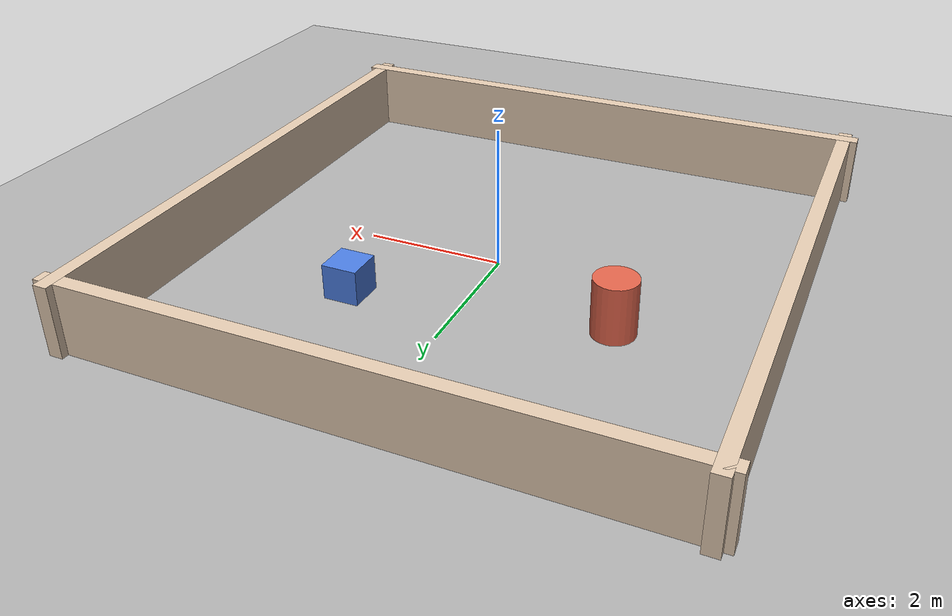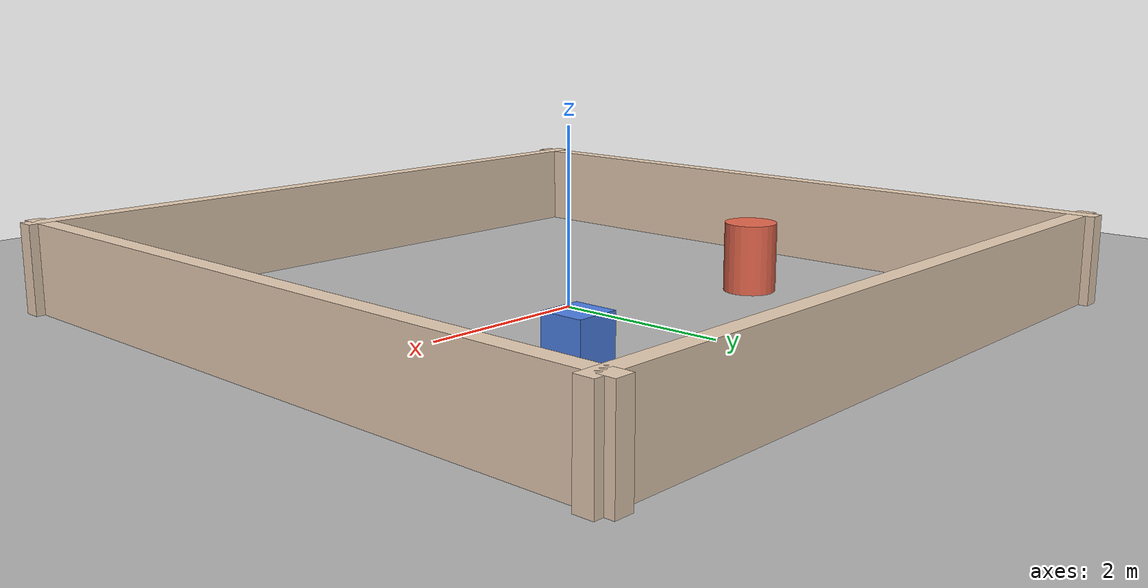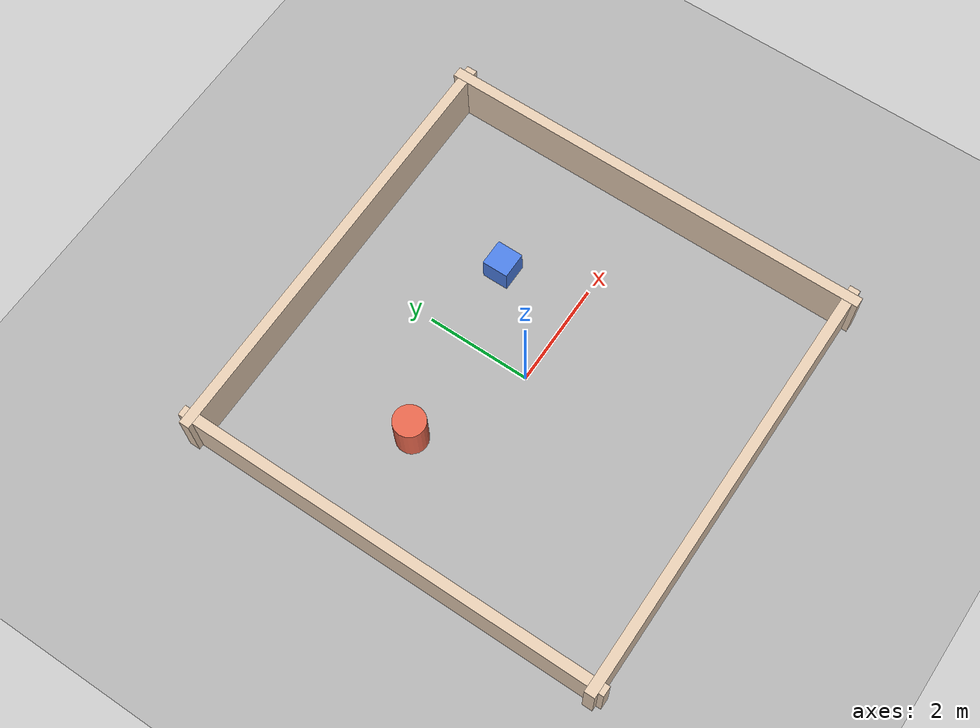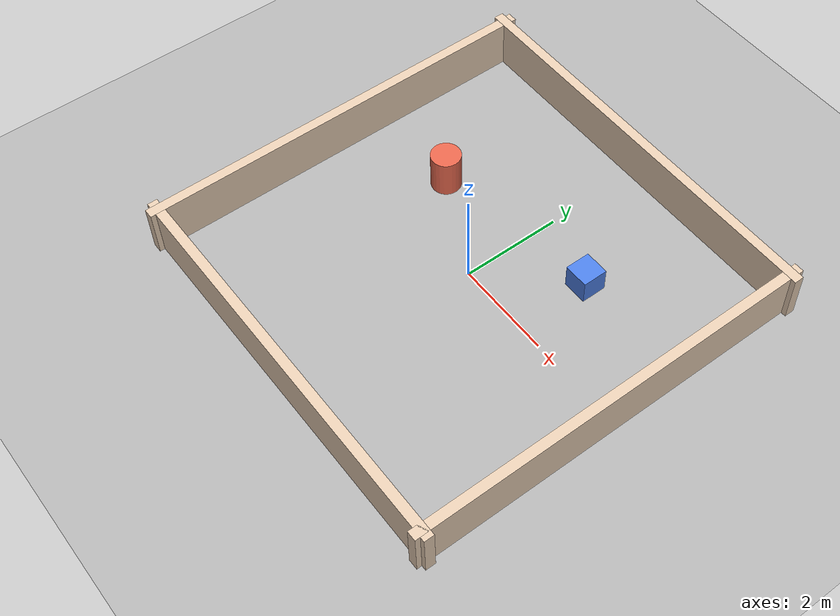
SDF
<?xml version="1.0" ?>
<sdf version="1.10">
  <world name="robot_base_world">

    <!-- 物理引擎 -->
    <plugin filename="gz-sim-physics-system"
            name="gz::sim::systems::Physics"/>
    <!-- 支持运行时创建/删除实体（ros_gz_sim 的 create 要用） -->
    <plugin filename="gz-sim-user-commands-system"
            name="gz::sim::systems::UserCommands"/>
    <!-- 把场景发布给 GUI -->
    <plugin filename="gz-sim-scene-broadcaster-system"
            name="gz::sim::systems::SceneBroadcaster"/>
    <!-- ⚠️ 传感器系统 —— 没有它 gpu_lidar 不会产生任何数据 -->
    <plugin filename="gz-sim-sensors-system"
            name="gz::sim::systems::Sensors">
      <render_engine>ogre2</render_engine>
    </plugin>

    <!-- 光照 -->
    <light type="directional" name="sun">
      <cast_shadows>true</cast_shadows>
      <pose>0 0 10 0 0 0</pose>
      <diffuse>0.8 0.8 0.8 1</diffuse>
      <specular>0.2 0.2 0.2 1</specular>
      <direction>-0.5 0.1 -0.9</direction>
    </light>

    <!-- 地面 -->
    <model name="ground_plane">
      <static>true</static>
      <link name="link">
        <collision name="collision">
          <geometry>
            <plane><normal>0 0 1</normal><size>100 100</size></plane>
          </geometry>
        </collision>
        <visual name="visual">
          <geometry>
            <plane><normal>0 0 1</normal><size>100 100</size></plane>
          </geometry>
          <material>
            <ambient>0.5 0.5 0.5 1</ambient>
            <diffuse>0.7 0.7 0.7 1</diffuse>
          </material>
        </visual>
      </link>
    </model>

    <!-- 四面墙：8x8 m 房间，墙高 1 m、厚 0.2 m -->
    <model name="wall_north">
      <static>true</static>
      <pose>0  4.0 0.5  0 0 0</pose>
      <link name="link">
        <collision name="c"><geometry><box><size>8.4 0.2 1.0</size></box></geometry></collision>
        <visual name="v">
          <geometry><box><size>8.4 0.2 1.0</size></box></geometry>
          <material><ambient>0.8 0.7 0.6 1</ambient><diffuse>0.9 0.8 0.7 1</diffuse></material>
        </visual>
      </link>
    </model>

    <model name="wall_south">
      <static>true</static>
      <pose>0 -4.0 0.5  0 0 0</pose>
      <link name="link">
        <collision name="c"><geometry><box><size>8.4 0.2 1.0</size></box></geometry></collision>
        <visual name="v">
          <geometry><box><size>8.4 0.2 1.0</size></box></geometry>
          <material><ambient>0.8 0.7 0.6 1</ambient><diffuse>0.9 0.8 0.7 1</diffuse></material>
        </visual>
      </link>
    </model>

    <model name="wall_east">
      <static>true</static>
      <pose> 4.0 0 0.5  0 0 0</pose>
      <link name="link">
        <collision name="c"><geometry><box><size>0.2 8.4 1.0</size></box></geometry></collision>
        <visual name="v">
          <geometry><box><size>0.2 8.4 1.0</size></box></geometry>
          <material><ambient>0.8 0.7 0.6 1</ambient><diffuse>0.9 0.8 0.7 1</diffuse></material>
        </visual>
      </link>
    </model>

    <model name="wall_west">
      <static>true</static>
      <pose>-4.0 0 0.5  0 0 0</pose>
      <link name="link">
        <collision name="c"><geometry><box><size>0.2 8.4 1.0</size></box></geometry></collision>
        <visual name="v">
          <geometry><box><size>0.2 8.4 1.0</size></box></geometry>
          <material><ambient>0.8 0.7 0.6 1</ambient><diffuse>0.9 0.8 0.7 1</diffuse></material>
        </visual>
      </link>
    </model>

    <!-- 房间里放两个障碍物，方便观察建图与避障 -->
    <model name="box_obstacle">
      <static>true</static>
      <pose>1.5 1.5 0.25  0 0 0</pose>
      <link name="link">
        <collision name="c"><geometry><box><size>0.5 0.5 0.5</size></box></geometry></collision>
        <visual name="v">
          <geometry><box><size>0.5 0.5 0.5</size></box></geometry>
          <material><ambient>0.2 0.4 0.8 1</ambient><diffuse>0.3 0.5 0.9 1</diffuse></material>
        </visual>
      </link>
    </model>

    <model name="cylinder_obstacle">
      <static>true</static>
      <pose>-2.0 1.0 0.4  0 0 0</pose>
      <link name="link">
        <collision name="c"><geometry><cylinder><radius>0.3</radius><length>0.8</length></cylinder></geometry></collision>
        <visual name="v">
          <geometry><cylinder><radius>0.3</radius><length>0.8</length></cylinder></geometry>
          <material><ambient>0.8 0.3 0.2 1</ambient><diffuse>0.9 0.4 0.3 1</diffuse></material>
        </visual>
      </link>
    </model>

  </world>
</sdf>
